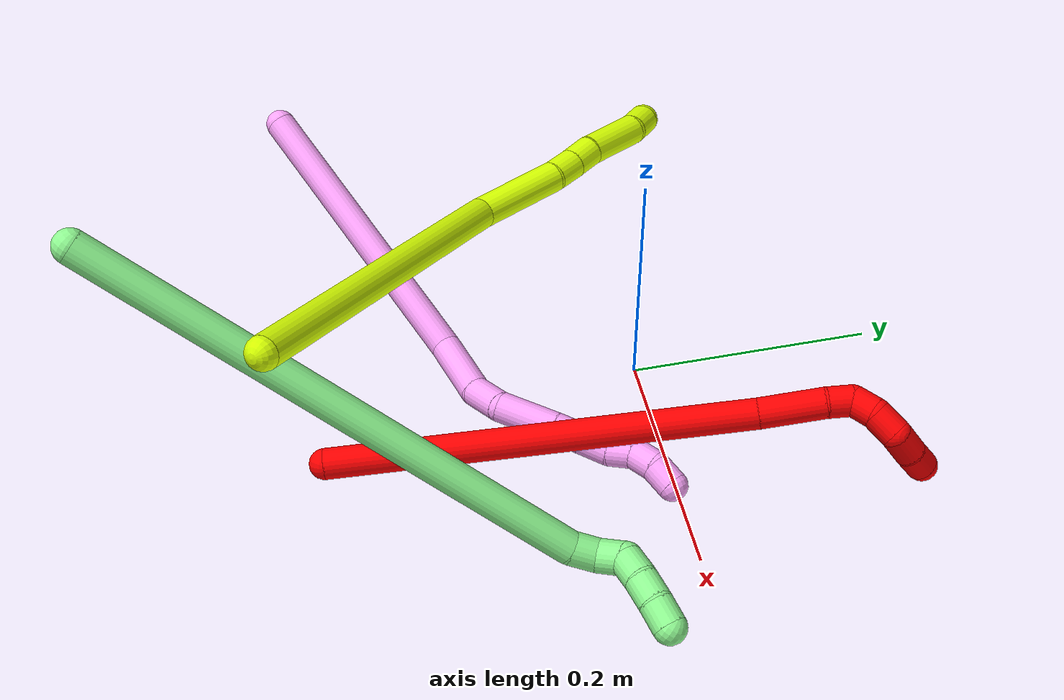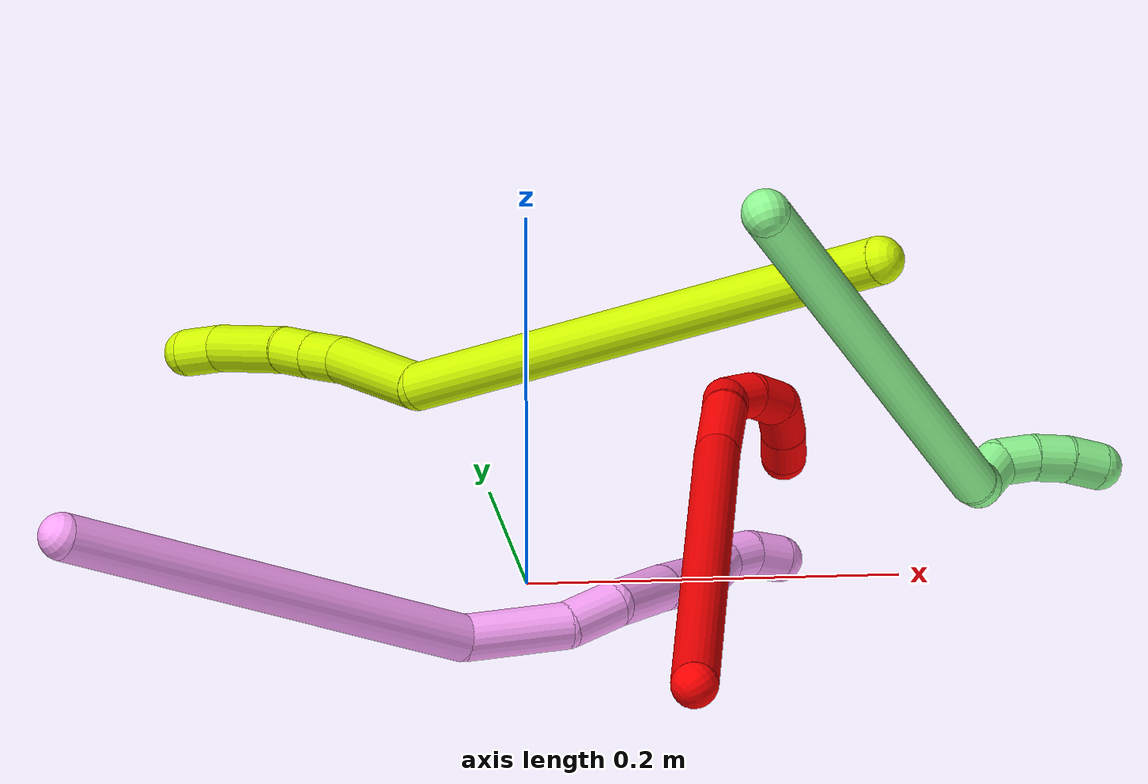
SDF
<sdf version="1.7">
 <world name="default">
  <model name="2">
   <static>0</static>
   <link name="2">
    <collision name="collision-cylinder-e_1_1_4">
     <pose>0.093319 0.098077 0.103034 -0.760754 0.580599 -0.237775</pose>
     <geometry><cylinder><radius>0.0125</radius><length>0.340255</length></cylinder></geometry>
     <surface>
      <friction><ode><mu>1.16</mu><mu2>1.16</mu2><slip1>0</slip1><slip2>0</slip2></ode></friction>
      <contact><ode><kp>1e+06</kp><kd>1</kd><max_vel>0</max_vel><min_depth>0.001</min_depth></ode></contact>
     </surface>
    </collision>
    <visual name="visual-cylinder-e_1_1_4">
     <pose>0.093319 0.098077 0.103034 -0.760754 0.580599 -0.237775</pose>
     <geometry><cylinder><radius>0.0125</radius><length>0.340255</length></cylinder></geometry>
     <material><ambient>1 0 0 1</ambient></material>
    </visual>
    <collision name="collision-cylinder-e_2_4_5">
     <pose>0.198428 0.211961 0.223919 -0.724766 0.459167 -0.176745</pose>
     <geometry><cylinder><radius>0.0125</radius><length>0.053201</length></cylinder></geometry>
     <surface>
      <friction><ode><mu>1.16</mu><mu2>1.16</mu2><slip1>0</slip1><slip2>0</slip2></ode></friction>
      <contact><ode><kp>1e+06</kp><kd>1</kd><max_vel>0</max_vel><min_depth>0.001</min_depth></ode></contact>
     </surface>
    </collision>
    <visual name="visual-cylinder-e_2_4_5">
     <pose>0.198428 0.211961 0.223919 -0.724766 0.459167 -0.176745</pose>
     <geometry><cylinder><radius>0.0125</radius><length>0.053201</length></cylinder></geometry>
     <material><ambient>1 0 0 1</ambient></material>
    </visual>
    <collision name="collision-cylinder-e_3_5_6">
     <pose>0.216259 0.233398 0.247739 -0.756097 0.634859 -0.259493</pose>
     <geometry><cylinder><radius>0.0125</radius><length>0.020377</length></cylinder></geometry>
     <surface>
      <friction><ode><mu>1.16</mu><mu2>1.16</mu2><slip1>0</slip1><slip2>0</slip2></ode></friction>
      <contact><ode><kp>1e+06</kp><kd>1</kd><max_vel>0</max_vel><min_depth>0.001</min_depth></ode></contact>
     </surface>
    </collision>
    <visual name="visual-cylinder-e_3_5_6">
     <pose>0.216259 0.233398 0.247739 -0.756097 0.634859 -0.259493</pose>
     <geometry><cylinder><radius>0.0125</radius><length>0.020377</length></cylinder></geometry>
     <material><ambient>1 0 0 1</ambient></material>
    </visual>
    <collision name="collision-cylinder-e_4_6_7">
     <pose>0.226659 0.238064 0.2627 0.106603 0.448979 0.024363</pose>
     <geometry><cylinder><radius>0.0125</radius><length>0.020078</length></cylinder></geometry>
     <surface>
      <friction><ode><mu>1.16</mu><mu2>1.16</mu2><slip1>0</slip1><slip2>0</slip2></ode></friction>
      <contact><ode><kp>1e+06</kp><kd>1</kd><max_vel>0</max_vel><min_depth>0.001</min_depth></ode></contact>
     </surface>
    </collision>
    <visual name="visual-cylinder-e_4_6_7">
     <pose>0.226659 0.238064 0.2627 0.106603 0.448979 0.024363</pose>
     <geometry><cylinder><radius>0.0125</radius><length>0.020078</length></cylinder></geometry>
     <material><ambient>1 0 0 1</ambient></material>
    </visual>
    <collision name="collision-cylinder-e_5_7_8">
     <pose>0.238078 0.233812 0.279046 0.420609 0.719725 0.160284</pose>
     <geometry><cylinder><radius>0.0125</radius><length>0.021424</length></cylinder></geometry>
     <surface>
      <friction><ode><mu>1.16</mu><mu2>1.16</mu2><slip1>0</slip1><slip2>0</slip2></ode></friction>
      <contact><ode><kp>1e+06</kp><kd>1</kd><max_vel>0</max_vel><min_depth>0.001</min_depth></ode></contact>
     </surface>
    </collision>
    <visual name="visual-cylinder-e_5_7_8">
     <pose>0.238078 0.233812 0.279046 0.420609 0.719725 0.160284</pose>
     <geometry><cylinder><radius>0.0125</radius><length>0.021424</length></cylinder></geometry>
     <material><ambient>1 0 0 1</ambient></material>
    </visual>
    <collision name="collision-cylinder-e_6_8_9">
     <pose>0.256868 0.228232 0.287456 1.13848 1.35889 0.954111</pose>
     <geometry><cylinder><radius>0.0125</radius><length>0.023994</length></cylinder></geometry>
     <surface>
      <friction><ode><mu>1.16</mu><mu2>1.16</mu2><slip1>0</slip1><slip2>0</slip2></ode></friction>
      <contact><ode><kp>1e+06</kp><kd>1</kd><max_vel>0</max_vel><min_depth>0.001</min_depth></ode></contact>
     </surface>
    </collision>
    <visual name="visual-cylinder-e_6_8_9">
     <pose>0.256868 0.228232 0.287456 1.13848 1.35889 0.954111</pose>
     <geometry><cylinder><radius>0.0125</radius><length>0.023994</length></cylinder></geometry>
     <material><ambient>1 0 0 1</ambient></material>
    </visual>
    <collision name="collision-cylinder-e_7_9_2">
     <pose>0.278874 0.224851 0.288493 1.58954 1.4651 1.48376</pose>
     <geometry><cylinder><radius>0.0125</radius><length>0.020671</length></cylinder></geometry>
     <surface>
      <friction><ode><mu>1.16</mu><mu2>1.16</mu2><slip1>0</slip1><slip2>0</slip2></ode></friction>
      <contact><ode><kp>1e+06</kp><kd>1</kd><max_vel>0</max_vel><min_depth>0.001</min_depth></ode></contact>
     </surface>
    </collision>
    <visual name="visual-cylinder-e_7_9_2">
     <pose>0.278874 0.224851 0.288493 1.58954 1.4651 1.48376</pose>
     <geometry><cylinder><radius>0.0125</radius><length>0.020671</length></cylinder></geometry>
     <material><ambient>1 0 0 1</ambient></material>
    </visual>
    <collision name="collision-sphere-2">
     <pose>0.289152 0.223761 0.288473 0 -0 0</pose>
     <geometry><sphere><radius>0.0125</radius></sphere></geometry>
     <surface>
      <friction><ode><mu>1.16</mu><mu2>1.16</mu2><slip1>0</slip1><slip2>0</slip2></ode></friction>
      <contact><ode><kp>1e+06</kp><kd>1</kd><max_vel>0</max_vel><min_depth>0.001</min_depth></ode></contact>
     </surface>
    </collision>
    <visual name="visual-sphere-2">
     <pose>0.289152 0.223761 0.288473 0 -0 0</pose>
     <geometry><sphere><radius>0.0125</radius></sphere></geometry>
     <material><ambient>1 0 0 1</ambient></material>
    </visual>
    <collision name="collision-sphere-9">
     <pose>0.268596 0.225941 0.288514 0 -0 0</pose>
     <geometry><sphere><radius>0.0125</radius></sphere></geometry>
     <surface>
      <friction><ode><mu>1.16</mu><mu2>1.16</mu2><slip1>0</slip1><slip2>0</slip2></ode></friction>
      <contact><ode><kp>1e+06</kp><kd>1</kd><max_vel>0</max_vel><min_depth>0.001</min_depth></ode></contact>
     </surface>
    </collision>
    <visual name="visual-sphere-9">
     <pose>0.268596 0.225941 0.288514 0 -0 0</pose>
     <geometry><sphere><radius>0.0125</radius></sphere></geometry>
     <material><ambient>1 0 0 1</ambient></material>
    </visual>
    <collision name="collision-sphere-4">
     <pose>0.186638 0.196153 0.206068 0 -0 0</pose>
     <geometry><sphere><radius>0.0125</radius></sphere></geometry>
     <surface>
      <friction><ode><mu>1.16</mu><mu2>1.16</mu2><slip1>0</slip1><slip2>0</slip2></ode></friction>
      <contact><ode><kp>1e+06</kp><kd>1</kd><max_vel>0</max_vel><min_depth>0.001</min_depth></ode></contact>
     </surface>
    </collision>
    <visual name="visual-sphere-4">
     <pose>0.186638 0.196153 0.206068 0 -0 0</pose>
     <geometry><sphere><radius>0.0125</radius></sphere></geometry>
     <material><ambient>1 0 0 1</ambient></material>
    </visual>
    <collision name="collision-sphere-1">
     <geometry><sphere><radius>0.0125</radius></sphere></geometry>
     <surface>
      <friction><ode><mu>1.16</mu><mu2>1.16</mu2><slip1>0</slip1><slip2>0</slip2></ode></friction>
      <contact><ode><kp>1e+06</kp><kd>1</kd><max_vel>0</max_vel><min_depth>0.001</min_depth></ode></contact>
     </surface>
    </collision>
    <visual name="visual-sphere-1">
     <geometry><sphere><radius>0.0125</radius></sphere></geometry>
     <material><ambient>1 0 0 1</ambient></material>
    </visual>
    <collision name="collision-sphere-8">
     <pose>0.245139 0.230523 0.286399 0 -0 0</pose>
     <geometry><sphere><radius>0.0125</radius></sphere></geometry>
     <surface>
      <friction><ode><mu>1.16</mu><mu2>1.16</mu2><slip1>0</slip1><slip2>0</slip2></ode></friction>
      <contact><ode><kp>1e+06</kp><kd>1</kd><max_vel>0</max_vel><min_depth>0.001</min_depth></ode></contact>
     </surface>
    </collision>
    <visual name="visual-sphere-8">
     <pose>0.245139 0.230523 0.286399 0 -0 0</pose>
     <geometry><sphere><radius>0.0125</radius></sphere></geometry>
     <material><ambient>1 0 0 1</ambient></material>
    </visual>
    <collision name="collision-sphere-5">
     <pose>0.210217 0.22777 0.241771 0 -0 0</pose>
     <geometry><sphere><radius>0.0125</radius></sphere></geometry>
     <surface>
      <friction><ode><mu>1.16</mu><mu2>1.16</mu2><slip1>0</slip1><slip2>0</slip2></ode></friction>
      <contact><ode><kp>1e+06</kp><kd>1</kd><max_vel>0</max_vel><min_depth>0.001</min_depth></ode></contact>
     </surface>
    </collision>
    <visual name="visual-sphere-5">
     <pose>0.210217 0.22777 0.241771 0 -0 0</pose>
     <geometry><sphere><radius>0.0125</radius></sphere></geometry>
     <material><ambient>1 0 0 1</ambient></material>
    </visual>
    <collision name="collision-sphere-6">
     <pose>0.222302 0.239026 0.253707 0 -0 0</pose>
     <geometry><sphere><radius>0.0125</radius></sphere></geometry>
     <surface>
      <friction><ode><mu>1.16</mu><mu2>1.16</mu2><slip1>0</slip1><slip2>0</slip2></ode></friction>
      <contact><ode><kp>1e+06</kp><kd>1</kd><max_vel>0</max_vel><min_depth>0.001</min_depth></ode></contact>
     </surface>
    </collision>
    <visual name="visual-sphere-6">
     <pose>0.222302 0.239026 0.253707 0 -0 0</pose>
     <geometry><sphere><radius>0.0125</radius></sphere></geometry>
     <material><ambient>1 0 0 1</ambient></material>
    </visual>
    <collision name="collision-sphere-7">
     <pose>0.231017 0.237101 0.271693 0 -0 0</pose>
     <geometry><sphere><radius>0.0125</radius></sphere></geometry>
     <surface>
      <friction><ode><mu>1.16</mu><mu2>1.16</mu2><slip1>0</slip1><slip2>0</slip2></ode></friction>
      <contact><ode><kp>1e+06</kp><kd>1</kd><max_vel>0</max_vel><min_depth>0.001</min_depth></ode></contact>
     </surface>
    </collision>
    <visual name="visual-sphere-7">
     <pose>0.231017 0.237101 0.271693 0 -0 0</pose>
     <geometry><sphere><radius>0.0125</radius></sphere></geometry>
     <material><ambient>1 0 0 1</ambient></material>
    </visual>
    <inertial>
     <pose>0.13659 0.138633 0.152264 0 -0 0</pose>
     <mass>0.5</mass>
     <inertia><ixx>0.002067</ixx><ixy>0</ixy><ixz>0</ixz><iyy>0.002</iyy><iyz>0</iyz><izz>-0.003707</izz></inertia>
    </inertial>
   </link>
   <pose>0.058508 -0.265868 0.014459 0.908112 0.876649 1.54146</pose>
  </model>
  <model name="4">
   <static>0</static>
   <link name="4">
    <collision name="collision-cylinder-e_1_1_4">
     <pose>0.02927 0.008932 -0.123104 -3.06917 0.23284 -2.54078</pose>
     <geometry><cylinder><radius>0.0125</radius><length>0.253702</length></cylinder></geometry>
     <surface>
      <friction><ode><mu>1.16</mu><mu2>1.16</mu2><slip1>0</slip1><slip2>0</slip2></ode></friction>
      <contact><ode><kp>1e+06</kp><kd>1</kd><max_vel>0</max_vel><min_depth>0.001</min_depth></ode></contact>
     </surface>
    </collision>
    <visual name="visual-cylinder-e_1_1_4">
     <pose>0.02927 0.008932 -0.123104 -3.06917 0.23284 -2.54078</pose>
     <geometry><cylinder><radius>0.0125</radius><length>0.253702</length></cylinder></geometry>
     <material><ambient>1 0.65098 0.996078 1</ambient></material>
    </visual>
    <collision name="collision-cylinder-e_2_4_5">
     <pose>0.075389 0.015564 -0.269491 3.04316 0.624132 2.83858</pose>
     <geometry><cylinder><radius>0.0125</radius><length>0.057662</length></cylinder></geometry>
     <surface>
      <friction><ode><mu>1.16</mu><mu2>1.16</mu2><slip1>0</slip1><slip2>0</slip2></ode></friction>
      <contact><ode><kp>1e+06</kp><kd>1</kd><max_vel>0</max_vel><min_depth>0.001</min_depth></ode></contact>
     </surface>
    </collision>
    <visual name="visual-cylinder-e_2_4_5">
     <pose>0.075389 0.015564 -0.269491 3.04316 0.624132 2.83858</pose>
     <geometry><cylinder><radius>0.0125</radius><length>0.057662</length></cylinder></geometry>
     <material><ambient>1 0.65098 0.996078 1</ambient></material>
    </visual>
    <collision name="collision-cylinder-e_3_5_6">
     <pose>0.103125 0.016238 -0.303404 -2.86886 0.778516 -2.49595</pose>
     <geometry><cylinder><radius>0.0125</radius><length>0.031008</length></cylinder></geometry>
     <surface>
      <friction><ode><mu>1.16</mu><mu2>1.16</mu2><slip1>0</slip1><slip2>0</slip2></ode></friction>
      <contact><ode><kp>1e+06</kp><kd>1</kd><max_vel>0</max_vel><min_depth>0.001</min_depth></ode></contact>
     </surface>
    </collision>
    <visual name="visual-cylinder-e_3_5_6">
     <pose>0.103125 0.016238 -0.303404 -2.86886 0.778516 -2.49595</pose>
     <geometry><cylinder><radius>0.0125</radius><length>0.031008</length></cylinder></geometry>
     <material><ambient>1 0.65098 0.996078 1</ambient></material>
    </visual>
    <collision name="collision-cylinder-e_4_6_7">
     <pose>0.123338 0.032456 -0.332373 -2.5161 0.391059 -1.09913</pose>
     <geometry><cylinder><radius>0.0125</radius><length>0.048937</length></cylinder></geometry>
     <surface>
      <friction><ode><mu>1.16</mu><mu2>1.16</mu2><slip1>0</slip1><slip2>0</slip2></ode></friction>
      <contact><ode><kp>1e+06</kp><kd>1</kd><max_vel>0</max_vel><min_depth>0.001</min_depth></ode></contact>
     </surface>
    </collision>
    <visual name="visual-cylinder-e_4_6_7">
     <pose>0.123338 0.032456 -0.332373 -2.5161 0.391059 -1.09913</pose>
     <geometry><cylinder><radius>0.0125</radius><length>0.048937</length></cylinder></geometry>
     <material><ambient>1 0.65098 0.996078 1</ambient></material>
    </visual>
    <collision name="collision-cylinder-e_5_7_8">
     <pose>0.136646 0.051916 -0.359777 -2.54064 0.347449 -1.03065</pose>
     <geometry><cylinder><radius>0.0125</radius><length>0.023381</length></cylinder></geometry>
     <surface>
      <friction><ode><mu>1.16</mu><mu2>1.16</mu2><slip1>0</slip1><slip2>0</slip2></ode></friction>
      <contact><ode><kp>1e+06</kp><kd>1</kd><max_vel>0</max_vel><min_depth>0.001</min_depth></ode></contact>
     </surface>
    </collision>
    <visual name="visual-cylinder-e_5_7_8">
     <pose>0.136646 0.051916 -0.359777 -2.54064 0.347449 -1.03065</pose>
     <geometry><cylinder><radius>0.0125</radius><length>0.023381</length></cylinder></geometry>
     <material><ambient>1 0.65098 0.996078 1</ambient></material>
    </visual>
    <collision name="collision-cylinder-e_6_8_9">
     <pose>0.14518 0.06427 -0.378152 -2.55856 0.387688 -1.15867</pose>
     <geometry><cylinder><radius>0.0125</radius><length>0.024088</length></cylinder></geometry>
     <surface>
      <friction><ode><mu>1.16</mu><mu2>1.16</mu2><slip1>0</slip1><slip2>0</slip2></ode></friction>
      <contact><ode><kp>1e+06</kp><kd>1</kd><max_vel>0</max_vel><min_depth>0.001</min_depth></ode></contact>
     </surface>
    </collision>
    <visual name="visual-cylinder-e_6_8_9">
     <pose>0.14518 0.06427 -0.378152 -2.55856 0.387688 -1.15867</pose>
     <geometry><cylinder><radius>0.0125</radius><length>0.024088</length></cylinder></geometry>
     <material><ambient>1 0.65098 0.996078 1</ambient></material>
    </visual>
    <collision name="collision-cylinder-e_7_9_10">
     <pose>0.154931 0.077118 -0.393032 -2.26383 0.537468 -1.06113</pose>
     <geometry><cylinder><radius>0.0125</radius><length>0.020305</length></cylinder></geometry>
     <surface>
      <friction><ode><mu>1.16</mu><mu2>1.16</mu2><slip1>0</slip1><slip2>0</slip2></ode></friction>
      <contact><ode><kp>1e+06</kp><kd>1</kd><max_vel>0</max_vel><min_depth>0.001</min_depth></ode></contact>
     </surface>
    </collision>
    <visual name="visual-cylinder-e_7_9_10">
     <pose>0.154931 0.077118 -0.393032 -2.26383 0.537468 -1.06113</pose>
     <geometry><cylinder><radius>0.0125</radius><length>0.020305</length></cylinder></geometry>
     <material><ambient>1 0.65098 0.996078 1</ambient></material>
    </visual>
    <collision name="collision-cylinder-e_8_10_11">
     <pose>0.165189 0.087031 -0.406763 -2.76756 0.523606 -1.91186</pose>
     <geometry><cylinder><radius>0.0125</radius><length>0.020243</length></cylinder></geometry>
     <surface>
      <friction><ode><mu>1.16</mu><mu2>1.16</mu2><slip1>0</slip1><slip2>0</slip2></ode></friction>
      <contact><ode><kp>1e+06</kp><kd>1</kd><max_vel>0</max_vel><min_depth>0.001</min_depth></ode></contact>
     </surface>
    </collision>
    <visual name="visual-cylinder-e_8_10_11">
     <pose>0.165189 0.087031 -0.406763 -2.76756 0.523606 -1.91186</pose>
     <geometry><cylinder><radius>0.0125</radius><length>0.020243</length></cylinder></geometry>
     <material><ambient>1 0.65098 0.996078 1</ambient></material>
    </visual>
    <collision name="collision-cylinder-e_9_11_2">
     <pose>0.173175 0.091563 -0.424747 -3.00704 0.28686 -2.26857</pose>
     <geometry><cylinder><radius>0.0125</radius><length>0.020672</length></cylinder></geometry>
     <surface>
      <friction><ode><mu>1.16</mu><mu2>1.16</mu2><slip1>0</slip1><slip2>0</slip2></ode></friction>
      <contact><ode><kp>1e+06</kp><kd>1</kd><max_vel>0</max_vel><min_depth>0.001</min_depth></ode></contact>
     </surface>
    </collision>
    <visual name="visual-cylinder-e_9_11_2">
     <pose>0.173175 0.091563 -0.424747 -3.00704 0.28686 -2.26857</pose>
     <geometry><cylinder><radius>0.0125</radius><length>0.020672</length></cylinder></geometry>
     <material><ambient>1 0.65098 0.996078 1</ambient></material>
    </visual>
    <collision name="collision-sphere-2">
     <pose>0.176099 0.092893 -0.434571 0 -0 0</pose>
     <geometry><sphere><radius>0.0125</radius></sphere></geometry>
     <surface>
      <friction><ode><mu>1.16</mu><mu2>1.16</mu2><slip1>0</slip1><slip2>0</slip2></ode></friction>
      <contact><ode><kp>1e+06</kp><kd>1</kd><max_vel>0</max_vel><min_depth>0.001</min_depth></ode></contact>
     </surface>
    </collision>
    <visual name="visual-sphere-2">
     <pose>0.176099 0.092893 -0.434571 0 -0 0</pose>
     <geometry><sphere><radius>0.0125</radius></sphere></geometry>
     <material><ambient>1 0.65098 0.996078 1</ambient></material>
    </visual>
    <collision name="collision-sphere-11">
     <pose>0.17025 0.090233 -0.414922 0 -0 0</pose>
     <geometry><sphere><radius>0.0125</radius></sphere></geometry>
     <surface>
      <friction><ode><mu>1.16</mu><mu2>1.16</mu2><slip1>0</slip1><slip2>0</slip2></ode></friction>
      <contact><ode><kp>1e+06</kp><kd>1</kd><max_vel>0</max_vel><min_depth>0.001</min_depth></ode></contact>
     </surface>
    </collision>
    <visual name="visual-sphere-11">
     <pose>0.17025 0.090233 -0.414922 0 -0 0</pose>
     <geometry><sphere><radius>0.0125</radius></sphere></geometry>
     <material><ambient>1 0.65098 0.996078 1</ambient></material>
    </visual>
    <collision name="collision-sphere-10">
     <pose>0.160128 0.083828 -0.398603 0 -0 0</pose>
     <geometry><sphere><radius>0.0125</radius></sphere></geometry>
     <surface>
      <friction><ode><mu>1.16</mu><mu2>1.16</mu2><slip1>0</slip1><slip2>0</slip2></ode></friction>
      <contact><ode><kp>1e+06</kp><kd>1</kd><max_vel>0</max_vel><min_depth>0.001</min_depth></ode></contact>
     </surface>
    </collision>
    <visual name="visual-sphere-10">
     <pose>0.160128 0.083828 -0.398603 0 -0 0</pose>
     <geometry><sphere><radius>0.0125</radius></sphere></geometry>
     <material><ambient>1 0.65098 0.996078 1</ambient></material>
    </visual>
    <collision name="collision-sphere-9">
     <pose>0.149733 0.070409 -0.38746 0 -0 0</pose>
     <geometry><sphere><radius>0.0125</radius></sphere></geometry>
     <surface>
      <friction><ode><mu>1.16</mu><mu2>1.16</mu2><slip1>0</slip1><slip2>0</slip2></ode></friction>
      <contact><ode><kp>1e+06</kp><kd>1</kd><max_vel>0</max_vel><min_depth>0.001</min_depth></ode></contact>
     </surface>
    </collision>
    <visual name="visual-sphere-9">
     <pose>0.149733 0.070409 -0.38746 0 -0 0</pose>
     <geometry><sphere><radius>0.0125</radius></sphere></geometry>
     <material><ambient>1 0.65098 0.996078 1</ambient></material>
    </visual>
    <collision name="collision-sphere-4">
     <pose>0.05854 0.017863 -0.246209 0 -0 0</pose>
     <geometry><sphere><radius>0.0125</radius></sphere></geometry>
     <surface>
      <friction><ode><mu>1.16</mu><mu2>1.16</mu2><slip1>0</slip1><slip2>0</slip2></ode></friction>
      <contact><ode><kp>1e+06</kp><kd>1</kd><max_vel>0</max_vel><min_depth>0.001</min_depth></ode></contact>
     </surface>
    </collision>
    <visual name="visual-sphere-4">
     <pose>0.05854 0.017863 -0.246209 0 -0 0</pose>
     <geometry><sphere><radius>0.0125</radius></sphere></geometry>
     <material><ambient>1 0.65098 0.996078 1</ambient></material>
    </visual>
    <collision name="collision-sphere-1">
     <geometry><sphere><radius>0.0125</radius></sphere></geometry>
     <surface>
      <friction><ode><mu>1.16</mu><mu2>1.16</mu2><slip1>0</slip1><slip2>0</slip2></ode></friction>
      <contact><ode><kp>1e+06</kp><kd>1</kd><max_vel>0</max_vel><min_depth>0.001</min_depth></ode></contact>
     </surface>
    </collision>
    <visual name="visual-sphere-1">
     <geometry><sphere><radius>0.0125</radius></sphere></geometry>
     <material><ambient>1 0.65098 0.996078 1</ambient></material>
    </visual>
    <collision name="collision-sphere-8">
     <pose>0.140626 0.058131 -0.368844 0 -0 0</pose>
     <geometry><sphere><radius>0.0125</radius></sphere></geometry>
     <surface>
      <friction><ode><mu>1.16</mu><mu2>1.16</mu2><slip1>0</slip1><slip2>0</slip2></ode></friction>
      <contact><ode><kp>1e+06</kp><kd>1</kd><max_vel>0</max_vel><min_depth>0.001</min_depth></ode></contact>
     </surface>
    </collision>
    <visual name="visual-sphere-8">
     <pose>0.140626 0.058131 -0.368844 0 -0 0</pose>
     <geometry><sphere><radius>0.0125</radius></sphere></geometry>
     <material><ambient>1 0.65098 0.996078 1</ambient></material>
    </visual>
    <collision name="collision-sphere-5">
     <pose>0.092237 0.013265 -0.292774 0 -0 0</pose>
     <geometry><sphere><radius>0.0125</radius></sphere></geometry>
     <surface>
      <friction><ode><mu>1.16</mu><mu2>1.16</mu2><slip1>0</slip1><slip2>0</slip2></ode></friction>
      <contact><ode><kp>1e+06</kp><kd>1</kd><max_vel>0</max_vel><min_depth>0.001</min_depth></ode></contact>
     </surface>
    </collision>
    <visual name="visual-sphere-5">
     <pose>0.092237 0.013265 -0.292774 0 -0 0</pose>
     <geometry><sphere><radius>0.0125</radius></sphere></geometry>
     <material><ambient>1 0.65098 0.996078 1</ambient></material>
    </visual>
    <collision name="collision-sphere-6">
     <pose>0.114012 0.019211 -0.314034 0 -0 0</pose>
     <geometry><sphere><radius>0.0125</radius></sphere></geometry>
     <surface>
      <friction><ode><mu>1.16</mu><mu2>1.16</mu2><slip1>0</slip1><slip2>0</slip2></ode></friction>
      <contact><ode><kp>1e+06</kp><kd>1</kd><max_vel>0</max_vel><min_depth>0.001</min_depth></ode></contact>
     </surface>
    </collision>
    <visual name="visual-sphere-6">
     <pose>0.114012 0.019211 -0.314034 0 -0 0</pose>
     <geometry><sphere><radius>0.0125</radius></sphere></geometry>
     <material><ambient>1 0.65098 0.996078 1</ambient></material>
    </visual>
    <collision name="collision-sphere-7">
     <pose>0.132665 0.045701 -0.350711 0 -0 0</pose>
     <geometry><sphere><radius>0.0125</radius></sphere></geometry>
     <surface>
      <friction><ode><mu>1.16</mu><mu2>1.16</mu2><slip1>0</slip1><slip2>0</slip2></ode></friction>
      <contact><ode><kp>1e+06</kp><kd>1</kd><max_vel>0</max_vel><min_depth>0.001</min_depth></ode></contact>
     </surface>
    </collision>
    <visual name="visual-sphere-7">
     <pose>0.132665 0.045701 -0.350711 0 -0 0</pose>
     <geometry><sphere><radius>0.0125</radius></sphere></geometry>
     <material><ambient>1 0.65098 0.996078 1</ambient></material>
    </visual>
    <inertial>
     <pose>0.075537 0.026476 -0.229922 0 -0 0</pose>
     <mass>0.5</mass>
     <inertia>
      <ixx>-0.001864</ixx>
      <ixy>0</ixy>
      <ixz>0</ixz>
      <iyy>0.0004</iyy>
      <iyz>0</iyz>
      <izz>-0.000477</izz>
     </inertia>
    </inertial>
   </link>
   <pose>-0.262537 -0.256358 0.098634 0.194645 -0.966362 0.18247</pose>
  </model>
  <model name="13">
   <static>0</static>
   <link name="13">
    <collision name="collision-cylinder-e_1_1_4">
     <pose>0.028038 0.196253 -0.00678 -1.60533 0.141824 -0.146791</pose>
     <geometry><cylinder><radius>0.0125</radius><length>0.396723</length></cylinder></geometry>
     <surface>
      <friction><ode><mu>1.16</mu><mu2>1.16</mu2><slip1>0</slip1><slip2>0</slip2></ode></friction>
      <contact><ode><kp>1e+06</kp><kd>1</kd><max_vel>0</max_vel><min_depth>0.001</min_depth></ode></contact>
     </surface>
    </collision>
    <visual name="visual-cylinder-e_1_1_4">
     <pose>0.028038 0.196253 -0.00678 -1.60533 0.141824 -0.146791</pose>
     <geometry><cylinder><radius>0.0125</radius><length>0.396723</length></cylinder></geometry>
     <material><ambient>0.564706 0.984314 0.572549 1</ambient></material>
    </visual>
    <collision name="collision-cylinder-e_2_4_5">
     <pose>0.057423 0.402616 -0.010982 -1.32109 0.128389 -0.09981</pose>
     <geometry><cylinder><radius>0.0125</radius><length>0.02104</length></cylinder></geometry>
     <surface>
      <friction><ode><mu>1.16</mu><mu2>1.16</mu2><slip1>0</slip1><slip2>0</slip2></ode></friction>
      <contact><ode><kp>1e+06</kp><kd>1</kd><max_vel>0</max_vel><min_depth>0.001</min_depth></ode></contact>
     </surface>
    </collision>
    <visual name="visual-cylinder-e_2_4_5">
     <pose>0.057423 0.402616 -0.010982 -1.32109 0.128389 -0.09981</pose>
     <geometry><cylinder><radius>0.0125</radius><length>0.02104</length></cylinder></geometry>
     <material><ambient>0.564706 0.984314 0.572549 1</ambient></material>
    </visual>
    <collision name="collision-cylinder-e_3_5_6">
     <pose>0.06543 0.418651 -0.001963 -0.743751 0.650522 -0.26156</pose>
     <geometry><cylinder><radius>0.0125</radius><length>0.021994</length></cylinder></geometry>
     <surface>
      <friction><ode><mu>1.16</mu><mu2>1.16</mu2><slip1>0</slip1><slip2>0</slip2></ode></friction>
      <contact><ode><kp>1e+06</kp><kd>1</kd><max_vel>0</max_vel><min_depth>0.001</min_depth></ode></contact>
     </surface>
    </collision>
    <visual name="visual-cylinder-e_3_5_6">
     <pose>0.06543 0.418651 -0.001963 -0.743751 0.650522 -0.26156</pose>
     <geometry><cylinder><radius>0.0125</radius><length>0.021994</length></cylinder></geometry>
     <material><ambient>0.564706 0.984314 0.572549 1</ambient></material>
    </visual>
    <collision name="collision-cylinder-e_4_6_7">
     <pose>0.081224 0.428892 0.004102 -1.65747 1.1279 -1.2077</pose>
     <geometry><cylinder><radius>0.0125</radius><length>0.020218</length></cylinder></geometry>
     <surface>
      <friction><ode><mu>1.16</mu><mu2>1.16</mu2><slip1>0</slip1><slip2>0</slip2></ode></friction>
      <contact><ode><kp>1e+06</kp><kd>1</kd><max_vel>0</max_vel><min_depth>0.001</min_depth></ode></contact>
     </surface>
    </collision>
    <visual name="visual-cylinder-e_4_6_7">
     <pose>0.081224 0.428892 0.004102 -1.65747 1.1279 -1.2077</pose>
     <geometry><cylinder><radius>0.0125</radius><length>0.020218</length></cylinder></geometry>
     <material><ambient>0.564706 0.984314 0.572549 1</ambient></material>
    </visual>
    <collision name="collision-cylinder-e_5_7_8">
     <pose>0.098794 0.438321 0.002016 -1.89363 1.00217 -1.30073</pose>
     <geometry><cylinder><radius>0.0125</radius><length>0.020022</length></cylinder></geometry>
     <surface>
      <friction><ode><mu>1.16</mu><mu2>1.16</mu2><slip1>0</slip1><slip2>0</slip2></ode></friction>
      <contact><ode><kp>1e+06</kp><kd>1</kd><max_vel>0</max_vel><min_depth>0.001</min_depth></ode></contact>
     </surface>
    </collision>
    <visual name="visual-cylinder-e_5_7_8">
     <pose>0.098794 0.438321 0.002016 -1.89363 1.00217 -1.30073</pose>
     <geometry><cylinder><radius>0.0125</radius><length>0.020022</length></cylinder></geometry>
     <material><ambient>0.564706 0.984314 0.572549 1</ambient></material>
    </visual>
    <collision name="collision-cylinder-e_6_8_2">
     <pose>0.114734 0.449443 -0.002445 -2.00009 0.848711 -1.22643</pose>
     <geometry><cylinder><radius>0.0125</radius><length>0.020001</length></cylinder></geometry>
     <surface>
      <friction><ode><mu>1.16</mu><mu2>1.16</mu2><slip1>0</slip1><slip2>0</slip2></ode></friction>
      <contact><ode><kp>1e+06</kp><kd>1</kd><max_vel>0</max_vel><min_depth>0.001</min_depth></ode></contact>
     </surface>
    </collision>
    <visual name="visual-cylinder-e_6_8_2">
     <pose>0.114734 0.449443 -0.002445 -2.00009 0.848711 -1.22643</pose>
     <geometry><cylinder><radius>0.0125</radius><length>0.020001</length></cylinder></geometry>
     <material><ambient>0.564706 0.984314 0.572549 1</ambient></material>
    </visual>
    <collision name="collision-sphere-2">
     <pose>0.122239 0.455453 -0.005196 0 -0 0</pose>
     <geometry><sphere><radius>0.0125</radius></sphere></geometry>
     <surface>
      <friction><ode><mu>1.16</mu><mu2>1.16</mu2><slip1>0</slip1><slip2>0</slip2></ode></friction>
      <contact><ode><kp>1e+06</kp><kd>1</kd><max_vel>0</max_vel><min_depth>0.001</min_depth></ode></contact>
     </surface>
    </collision>
    <visual name="visual-sphere-2">
     <pose>0.122239 0.455453 -0.005196 0 -0 0</pose>
     <geometry><sphere><radius>0.0125</radius></sphere></geometry>
     <material><ambient>0.564706 0.984314 0.572549 1</ambient></material>
    </visual>
    <collision name="collision-sphere-4">
     <pose>0.056077 0.392506 -0.01356 0 -0 0</pose>
     <geometry><sphere><radius>0.0125</radius></sphere></geometry>
     <surface>
      <friction><ode><mu>1.16</mu><mu2>1.16</mu2><slip1>0</slip1><slip2>0</slip2></ode></friction>
      <contact><ode><kp>1e+06</kp><kd>1</kd><max_vel>0</max_vel><min_depth>0.001</min_depth></ode></contact>
     </surface>
    </collision>
    <visual name="visual-sphere-4">
     <pose>0.056077 0.392506 -0.01356 0 -0 0</pose>
     <geometry><sphere><radius>0.0125</radius></sphere></geometry>
     <material><ambient>0.564706 0.984314 0.572549 1</ambient></material>
    </visual>
    <collision name="collision-sphere-1">
     <geometry><sphere><radius>0.0125</radius></sphere></geometry>
     <surface>
      <friction><ode><mu>1.16</mu><mu2>1.16</mu2><slip1>0</slip1><slip2>0</slip2></ode></friction>
      <contact><ode><kp>1e+06</kp><kd>1</kd><max_vel>0</max_vel><min_depth>0.001</min_depth></ode></contact>
     </surface>
    </collision>
    <visual name="visual-sphere-1">
     <geometry><sphere><radius>0.0125</radius></sphere></geometry>
     <material><ambient>0.564706 0.984314 0.572549 1</ambient></material>
    </visual>
    <collision name="collision-sphere-8">
     <pose>0.107229 0.443433 0.000306 0 -0 0</pose>
     <geometry><sphere><radius>0.0125</radius></sphere></geometry>
     <surface>
      <friction><ode><mu>1.16</mu><mu2>1.16</mu2><slip1>0</slip1><slip2>0</slip2></ode></friction>
      <contact><ode><kp>1e+06</kp><kd>1</kd><max_vel>0</max_vel><min_depth>0.001</min_depth></ode></contact>
     </surface>
    </collision>
    <visual name="visual-sphere-8">
     <pose>0.107229 0.443433 0.000306 0 -0 0</pose>
     <geometry><sphere><radius>0.0125</radius></sphere></geometry>
     <material><ambient>0.564706 0.984314 0.572549 1</ambient></material>
    </visual>
    <collision name="collision-sphere-5">
     <pose>0.05877 0.412726 -0.008404 0 -0 0</pose>
     <geometry><sphere><radius>0.0125</radius></sphere></geometry>
     <surface>
      <friction><ode><mu>1.16</mu><mu2>1.16</mu2><slip1>0</slip1><slip2>0</slip2></ode></friction>
      <contact><ode><kp>1e+06</kp><kd>1</kd><max_vel>0</max_vel><min_depth>0.001</min_depth></ode></contact>
     </surface>
    </collision>
    <visual name="visual-sphere-5">
     <pose>0.05877 0.412726 -0.008404 0 -0 0</pose>
     <geometry><sphere><radius>0.0125</radius></sphere></geometry>
     <material><ambient>0.564706 0.984314 0.572549 1</ambient></material>
    </visual>
    <collision name="collision-sphere-6">
     <pose>0.07209 0.424576 0.004477 0 -0 0</pose>
     <geometry><sphere><radius>0.0125</radius></sphere></geometry>
     <surface>
      <friction><ode><mu>1.16</mu><mu2>1.16</mu2><slip1>0</slip1><slip2>0</slip2></ode></friction>
      <contact><ode><kp>1e+06</kp><kd>1</kd><max_vel>0</max_vel><min_depth>0.001</min_depth></ode></contact>
     </surface>
    </collision>
    <visual name="visual-sphere-6">
     <pose>0.07209 0.424576 0.004477 0 -0 0</pose>
     <geometry><sphere><radius>0.0125</radius></sphere></geometry>
     <material><ambient>0.564706 0.984314 0.572549 1</ambient></material>
    </visual>
    <collision name="collision-sphere-7">
     <pose>0.090358 0.433208 0.003727 0 -0 0</pose>
     <geometry><sphere><radius>0.0125</radius></sphere></geometry>
     <surface>
      <friction><ode><mu>1.16</mu><mu2>1.16</mu2><slip1>0</slip1><slip2>0</slip2></ode></friction>
      <contact><ode><kp>1e+06</kp><kd>1</kd><max_vel>0</max_vel><min_depth>0.001</min_depth></ode></contact>
     </surface>
    </collision>
    <visual name="visual-sphere-7">
     <pose>0.090358 0.433208 0.003727 0 -0 0</pose>
     <geometry><sphere><radius>0.0125</radius></sphere></geometry>
     <material><ambient>0.564706 0.984314 0.572549 1</ambient></material>
    </visual>
    <inertial>
     <pose>0.039372 0.243949 -0.005779 0 -0 0</pose>
     <mass>0.5</mass>
     <inertia>
      <ixx>0.004366</ixx>
      <ixy>0</ixy>
      <ixz>0</ixz>
      <iyy>-0.000789</iyy>
      <iyz>0</iyz>
      <izz>-0.005911</izz>
     </inertia>
    </inertial>
   </link>
   <pose>0.07634 -0.407717 0.291392 -0.64768 -0.345527 -0.035795</pose>
  </model>
  <model name="15">
   <static>0</static>
   <link name="15">
    <collision name="collision-cylinder-e_1_1_4">
     <pose>-0.005522 -0.002619 -0.150857 3.12423 -0.036581 -2.25542</pose>
     <geometry><cylinder><radius>0.0125</radius><length>0.301962</length></cylinder></geometry>
     <surface>
      <friction><ode><mu>1.16</mu><mu2>1.16</mu2><slip1>0</slip1><slip2>0</slip2></ode></friction>
      <contact><ode><kp>1e+06</kp><kd>1</kd><max_vel>0</max_vel><min_depth>0.001</min_depth></ode></contact>
     </surface>
    </collision>
    <visual name="visual-cylinder-e_1_1_4">
     <pose>-0.005522 -0.002619 -0.150857 3.12423 -0.036581 -2.25542</pose>
     <geometry><cylinder><radius>0.0125</radius><length>0.301962</length></cylinder></geometry>
     <material><ambient>0.835294 1 0 1</ambient></material>
    </visual>
    <collision name="collision-cylinder-e_2_4_5">
     <pose>-0.010483 0.012679 -0.333935 -2.63407 0.0152 -0.058591</pose>
     <geometry><cylinder><radius>0.0125</radius><length>0.073744</length></cylinder></geometry>
     <surface>
      <friction><ode><mu>1.16</mu><mu2>1.16</mu2><slip1>0</slip1><slip2>0</slip2></ode></friction>
      <contact><ode><kp>1e+06</kp><kd>1</kd><max_vel>0</max_vel><min_depth>0.001</min_depth></ode></contact>
     </surface>
    </collision>
    <visual name="visual-cylinder-e_2_4_5">
     <pose>-0.010483 0.012679 -0.333935 -2.63407 0.0152 -0.058591</pose>
     <geometry><cylinder><radius>0.0125</radius><length>0.073744</length></cylinder></geometry>
     <material><ambient>0.835294 1 0 1</ambient></material>
    </visual>
    <collision name="collision-cylinder-e_3_5_6">
     <pose>-0.010868 0.034502 -0.377167 -2.80083 -0.080722 0.461092</pose>
     <geometry><cylinder><radius>0.0125</radius><length>0.023441</length></cylinder></geometry>
     <surface>
      <friction><ode><mu>1.16</mu><mu2>1.16</mu2><slip1>0</slip1><slip2>0</slip2></ode></friction>
      <contact><ode><kp>1e+06</kp><kd>1</kd><max_vel>0</max_vel><min_depth>0.001</min_depth></ode></contact>
     </surface>
    </collision>
    <visual name="visual-cylinder-e_3_5_6">
     <pose>-0.010868 0.034502 -0.377167 -2.80083 -0.080722 0.461092</pose>
     <geometry><cylinder><radius>0.0125</radius><length>0.023441</length></cylinder></geometry>
     <material><ambient>0.835294 1 0 1</ambient></material>
    </visual>
    <collision name="collision-cylinder-e_4_6_7">
     <pose>-0.013188 0.042323 -0.398872 -2.79047 -0.120144 0.653792</pose>
     <geometry><cylinder><radius>0.0125</radius><length>0.022945</length></cylinder></geometry>
     <surface>
      <friction><ode><mu>1.16</mu><mu2>1.16</mu2><slip1>0</slip1><slip2>0</slip2></ode></friction>
      <contact><ode><kp>1e+06</kp><kd>1</kd><max_vel>0</max_vel><min_depth>0.001</min_depth></ode></contact>
     </surface>
    </collision>
    <visual name="visual-cylinder-e_4_6_7">
     <pose>-0.013188 0.042323 -0.398872 -2.79047 -0.120144 0.653792</pose>
     <geometry><cylinder><radius>0.0125</radius><length>0.022945</length></cylinder></geometry>
     <material><ambient>0.835294 1 0 1</ambient></material>
    </visual>
    <collision name="collision-cylinder-e_5_7_8">
     <pose>-0.014042 0.054364 -0.435476 -2.83777 0.019171 -0.125063</pose>
     <geometry><cylinder><radius>0.0125</radius><length>0.054316</length></cylinder></geometry>
     <surface>
      <friction><ode><mu>1.16</mu><mu2>1.16</mu2><slip1>0</slip1><slip2>0</slip2></ode></friction>
      <contact><ode><kp>1e+06</kp><kd>1</kd><max_vel>0</max_vel><min_depth>0.001</min_depth></ode></contact>
     </surface>
    </collision>
    <visual name="visual-cylinder-e_5_7_8">
     <pose>-0.014042 0.054364 -0.435476 -2.83777 0.019171 -0.125063</pose>
     <geometry><cylinder><radius>0.0125</radius><length>0.054316</length></cylinder></geometry>
     <material><ambient>0.835294 1 0 1</ambient></material>
    </visual>
    <collision name="collision-cylinder-e_6_8_2">
     <pose>-0.014988 0.06316 -0.473071 -3.08413 -0.124651 2.27843</pose>
     <geometry><cylinder><radius>0.0125</radius><length>0.023592</length></cylinder></geometry>
     <surface>
      <friction><ode><mu>1.16</mu><mu2>1.16</mu2><slip1>0</slip1><slip2>0</slip2></ode></friction>
      <contact><ode><kp>1e+06</kp><kd>1</kd><max_vel>0</max_vel><min_depth>0.001</min_depth></ode></contact>
     </surface>
    </collision>
    <visual name="visual-cylinder-e_6_8_2">
     <pose>-0.014988 0.06316 -0.473071 -3.08413 -0.124651 2.27843</pose>
     <geometry><cylinder><radius>0.0125</radius><length>0.023592</length></cylinder></geometry>
     <material><ambient>0.835294 1 0 1</ambient></material>
    </visual>
    <collision name="collision-sphere-2">
     <pose>-0.016455 0.063832 -0.484756 0 -0 0</pose>
     <geometry><sphere><radius>0.0125</radius></sphere></geometry>
     <surface>
      <friction><ode><mu>1.16</mu><mu2>1.16</mu2><slip1>0</slip1><slip2>0</slip2></ode></friction>
      <contact><ode><kp>1e+06</kp><kd>1</kd><max_vel>0</max_vel><min_depth>0.001</min_depth></ode></contact>
     </surface>
    </collision>
    <visual name="visual-sphere-2">
     <pose>-0.016455 0.063832 -0.484756 0 -0 0</pose>
     <geometry><sphere><radius>0.0125</radius></sphere></geometry>
     <material><ambient>0.835294 1 0 1</ambient></material>
    </visual>
    <collision name="collision-sphere-4">
     <pose>-0.011044 -0.005239 -0.301715 0 -0 0</pose>
     <geometry><sphere><radius>0.0125</radius></sphere></geometry>
     <surface>
      <friction><ode><mu>1.16</mu><mu2>1.16</mu2><slip1>0</slip1><slip2>0</slip2></ode></friction>
      <contact><ode><kp>1e+06</kp><kd>1</kd><max_vel>0</max_vel><min_depth>0.001</min_depth></ode></contact>
     </surface>
    </collision>
    <visual name="visual-sphere-4">
     <pose>-0.011044 -0.005239 -0.301715 0 -0 0</pose>
     <geometry><sphere><radius>0.0125</radius></sphere></geometry>
     <material><ambient>0.835294 1 0 1</ambient></material>
    </visual>
    <collision name="collision-sphere-1">
     <geometry><sphere><radius>0.0125</radius></sphere></geometry>
     <surface>
      <friction><ode><mu>1.16</mu><mu2>1.16</mu2><slip1>0</slip1><slip2>0</slip2></ode></friction>
      <contact><ode><kp>1e+06</kp><kd>1</kd><max_vel>0</max_vel><min_depth>0.001</min_depth></ode></contact>
     </surface>
    </collision>
    <visual name="visual-sphere-1">
     <geometry><sphere><radius>0.0125</radius></sphere></geometry>
     <material><ambient>0.835294 1 0 1</ambient></material>
    </visual>
    <collision name="collision-sphere-8">
     <pose>-0.013522 0.062488 -0.461385 0 -0 0</pose>
     <geometry><sphere><radius>0.0125</radius></sphere></geometry>
     <surface>
      <friction><ode><mu>1.16</mu><mu2>1.16</mu2><slip1>0</slip1><slip2>0</slip2></ode></friction>
      <contact><ode><kp>1e+06</kp><kd>1</kd><max_vel>0</max_vel><min_depth>0.001</min_depth></ode></contact>
     </surface>
    </collision>
    <visual name="visual-sphere-8">
     <pose>-0.013522 0.062488 -0.461385 0 -0 0</pose>
     <geometry><sphere><radius>0.0125</radius></sphere></geometry>
     <material><ambient>0.835294 1 0 1</ambient></material>
    </visual>
    <collision name="collision-sphere-5">
     <pose>-0.009923 0.030598 -0.366156 0 -0 0</pose>
     <geometry><sphere><radius>0.0125</radius></sphere></geometry>
     <surface>
      <friction><ode><mu>1.16</mu><mu2>1.16</mu2><slip1>0</slip1><slip2>0</slip2></ode></friction>
      <contact><ode><kp>1e+06</kp><kd>1</kd><max_vel>0</max_vel><min_depth>0.001</min_depth></ode></contact>
     </surface>
    </collision>
    <visual name="visual-sphere-5">
     <pose>-0.009923 0.030598 -0.366156 0 -0 0</pose>
     <geometry><sphere><radius>0.0125</radius></sphere></geometry>
     <material><ambient>0.835294 1 0 1</ambient></material>
    </visual>
    <collision name="collision-sphere-6">
     <pose>-0.011813 0.038406 -0.388177 0 -0 0</pose>
     <geometry><sphere><radius>0.0125</radius></sphere></geometry>
     <surface>
      <friction><ode><mu>1.16</mu><mu2>1.16</mu2><slip1>0</slip1><slip2>0</slip2></ode></friction>
      <contact><ode><kp>1e+06</kp><kd>1</kd><max_vel>0</max_vel><min_depth>0.001</min_depth></ode></contact>
     </surface>
    </collision>
    <visual name="visual-sphere-6">
     <pose>-0.011813 0.038406 -0.388177 0 -0 0</pose>
     <geometry><sphere><radius>0.0125</radius></sphere></geometry>
     <material><ambient>0.835294 1 0 1</ambient></material>
    </visual>
    <collision name="collision-sphere-7">
     <pose>-0.014563 0.046241 -0.409567 0 -0 0</pose>
     <geometry><sphere><radius>0.0125</radius></sphere></geometry>
     <surface>
      <friction><ode><mu>1.16</mu><mu2>1.16</mu2><slip1>0</slip1><slip2>0</slip2></ode></friction>
      <contact><ode><kp>1e+06</kp><kd>1</kd><max_vel>0</max_vel><min_depth>0.001</min_depth></ode></contact>
     </surface>
    </collision>
    <visual name="visual-sphere-7">
     <pose>-0.014563 0.046241 -0.409567 0 -0 0</pose>
     <geometry><sphere><radius>0.0125</radius></sphere></geometry>
     <material><ambient>0.835294 1 0 1</ambient></material>
    </visual>
    <inertial>
     <pose>-0.008228 0.012734 -0.245972 0 -0 0</pose>
     <mass>0.5</mass>
     <inertia>
      <ixx>-0.003191</ixx>
      <ixy>0</ixy>
      <ixz>0</ixz>
      <iyy>-0.00037</iyy>
      <iyz>0</iyz>
      <izz>6.3e-05</izz>
     </inertia>
    </inertial>
   </link>
   <pose>0.148082 -0.2968 0.240877 1.0626 0.746163 0.467858</pose>
  </model>
 </world>
</sdf>
